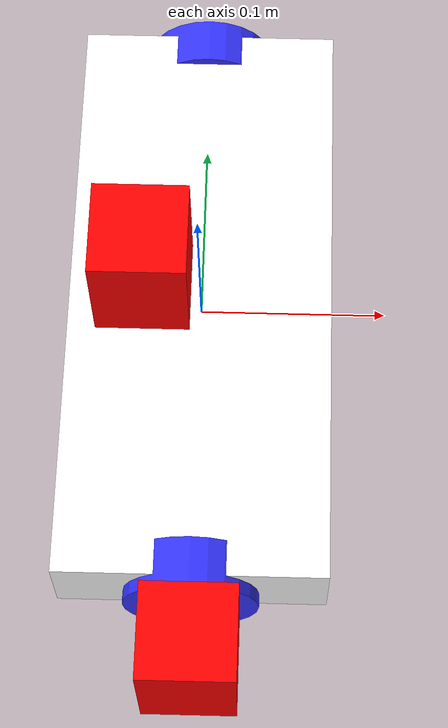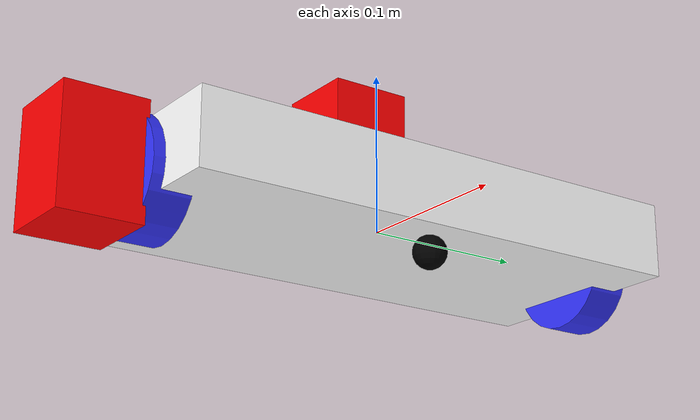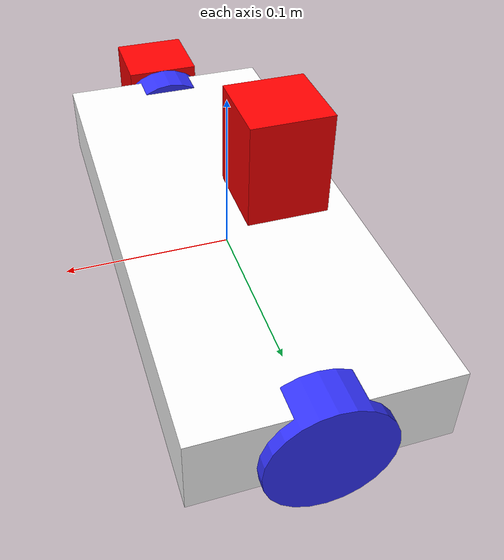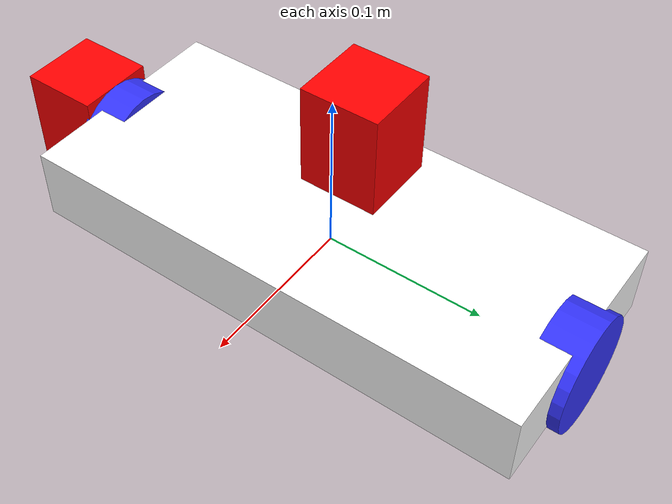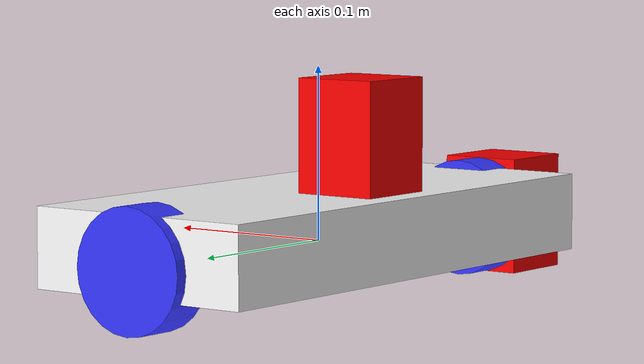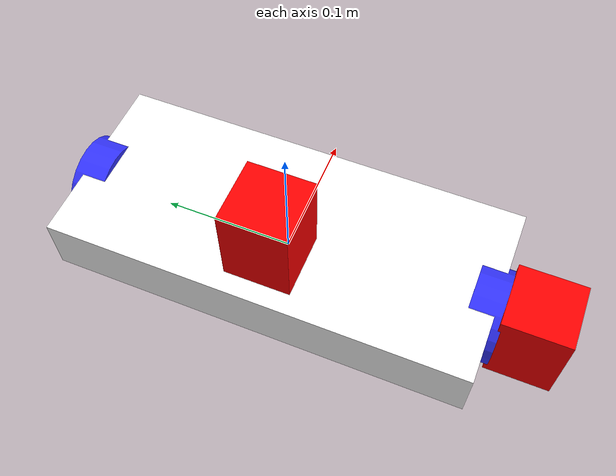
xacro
<?xml version="1.0"?>
<robot xmlns:xacro="http://www.ros.org/wiki/xacro"  name="robot">

    <xacro:arg name="use_ros2_control" default="true"/>
    <xacro:arg name="sim_mode" default="false"/>

    <xacro:include filename="robot_core.xacro" />

    <xacro:if value="$(arg use_ros2_control)">
        <xacro:include filename="ros2_control.xacro" />
    </xacro:if>

    <xacro:unless value="$(arg use_ros2_control)">
       <xacro:include filename="gazebo_control.xacro"/>
    </xacro:unless>

    <xacro:include filename="lidar.xacro"/>
    <xacro:include filename="lidar_2nd.xacro"/>

</robot>

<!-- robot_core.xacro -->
<robot xmlns:xacro="http://www.ros.org/wiki/xacro" >

    <xacro:include filename="inertial_macros.xacro"/>

    <material name="white">
        <color rgba="1 1 1 1" />
    </material>

    <material name="orange">
        <color rgba="1 0.3 0.1 1" />
    </material>

    <material name="blue">
        <color rgba="0.2 0.2 1 1" />
    </material>

    <material name="red">
        <color rgba="1 0 0 1" />
    </material>

    <material name="black">
        <color rgba="0 0 0 1" />
    </material>

    <!-- BASE LINK  -->

    <link name="base_link">

    </link>

    <!-- BASE_FOOTPRINT LINK -->
    <joint name="base_footprint_joint" type="fixed">
        <parent link="base_link"/>
        <child link="base_footprint"/>
        <origin xyz="0 0 0" rpy="0 0 0"/>
    </joint>

    <link name="base_footprint">
    </link>

    <!--  CHASSIS LINK  -->
    <joint name="chassis_joint" type="fixed">
        <parent link="base_link"/>
        <child link="chassis"/>
        <origin xyz="0 0 0"/>
    </joint>

    <link name="chassis">
        <visual>
            <origin xyz="0 0 0.007"/>
            <geometry>
                <box size="0.140 0.320 0.0455"/>
            </geometry>
            <material name="white"/>
        </visual>
        <collision>
            <origin xyz="0 0 0.007"/>
            <geometry>
                <box size="0.140 0.320 0.0455"/>
            </geometry>
        </collision>
        <xacro:inertial_box mass="0.5" x="0.140" y="0.320" z="0.0455">
            <origin xyz="0 0 0" rpy="0 0 0"/>
        </xacro:inertial_box>
    </link>

    <gazebo reference="chassis">
        <material>Gazebo/White</material>
    </gazebo>

    <!--  LEFT WHEEL LINK  -->
    <joint name="left_wheel_joint" type="continuous">
        <parent link="base_link"/>
        <child link="left_wheel"/>
        <origin xyz="0 0.15425 0" rpy="-${pi/2} 0 0"/>
        <axis xyz="0 0 1"/>
    </joint>

    <link name="left_wheel">
        <visual>
            <geometry>
                <cylinder radius="0.035" length="0.0254"/>
            </geometry>
            <material name="blue"/>
        </visual>
        <collision>
            <geometry>
                <sphere radius="0.035"/>
            </geometry>
        </collision>
        <xacro:inertial_sphere mass="0.1" radius="0.035" >
            <origin xyz="0 0 0" rpy="0 0 0"/>
        </xacro:inertial_sphere>
    </link>

    <gazebo reference="left_wheel">
        <material>Gazebo/Blue</material>
    </gazebo>

    <!--  RIGHT WHEEL LINK  -->
    <joint name="right_wheel_joint" type="continuous">
        <parent link="base_link"/>
        <child link="right_wheel"/>
        <origin xyz="0 -0.15425 0" rpy="${pi/2} 0 0"/>
        <axis xyz="0 0 -1"/>
    </joint>

    <link name="right_wheel">
        <visual>
            <geometry>
                <cylinder radius="0.035" length="0.0254"/>
            </geometry>
            <material name="blue"/>
        </visual>
        <collision>
            <geometry>
                <sphere radius="0.035"/>
            </geometry>
        </collision>
        <xacro:inertial_sphere mass="0.1" radius="0.035" >
            <origin xyz="0 0 0" rpy="0 0 0"/>
        </xacro:inertial_sphere>
    </link>

    <gazebo reference="right_wheel">
        <material>Gazebo/Blue</material>
    </gazebo>

    <!--  CASTER WHEEL LINK-->
    <joint name="caster_wheel_joint" type="fixed">
        <parent link="base_link"/>
        <child link="caster_wheel"/>
        <origin xyz="0.05 0 -0.025"/>
    </joint>

    <link name="caster_wheel">
        <visual>
            <geometry>
                <sphere radius="0.01"/>
            </geometry>
            <material name="black"/>
        </visual>
        <collision>
            <geometry>
                <sphere radius="0.01"/>
            </geometry>
        </collision>
        <xacro:inertial_sphere mass="0.01" radius="0.01">
            <origin xyz="0 0 0" rpy="0 0 0"/>
        </xacro:inertial_sphere>
    </link>

    <gazebo reference="caster_wheel">
        <material>Gazebo/Black</material>
        <mu1 value="0.0"/>
        <mu2 value="0.0"/>

    </gazebo>

</robot>

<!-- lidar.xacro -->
<robot xmlns:xacro="http://www.ros.org/wiki/xacro" >

    <joint name= "laser_joint" type="fixed">
        <parent link="chassis"/>
        <child link="laser_frame"/>
        <origin xyz="0.0 -0.19 0.0" rpy="${pi} 0 ${-pi/2}"/>
    </joint>

    <link name="laser_frame">
         <visual>
            <geometry>
                <box size="0.05 0.05 0.070"/>
            </geometry>
            <material name="red"/>
        </visual>
        <collision>
            <geometry>
                <box size="0.05 0.05 0.070"/>
            </geometry>
        </collision>
        <xacro:inertial_box mass="0.1" x="0.05" y="0.05" z="0.070">
            <origin xyz="0 0 0" rpy="0 0 0"/>
        </xacro:inertial_box>
    </link>

    <gazebo reference="laser_frame">
        <material>Gazebo/Red</material>
        <sensor name="laser" type="ray">
            <pose> 0 0 0 0 0 0 </pose>
            <visualize>true</visualize>
            <update_rate>10</update_rate>
            <ray>
                <scan>
                    <horizontal>
                        <samples>636</samples>
                        <resolution>0.36</resolution>
                        <min_angle>-2.0</min_angle>
                        <max_angle>2.0</max_angle>
                    </horizontal>
                </scan>
                <range>
                    <min>0.04</min>
                    <max>4</max>
                    <resolution>0.36</resolution>
                </range>
            </ray>
            <plugin name="laser_controller" filename="libgazebo_ros_ray_sensor.so">
                <ros>
                    <argument>~/out:=scan</argument>
                </ros>
                <output_type>sensor_msgs/LaserScan</output_type>
                <frame_name>laser_frame</frame_name>
            </plugin>
        </sensor>

    </gazebo>

</robot>

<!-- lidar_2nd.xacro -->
<robot xmlns:xacro="http://www.ros.org/wiki/xacro" >

    <joint name= "laser_joint2" type="fixed">
        <parent link="chassis"/>
        <child link="laser_frame2"/>
        <origin xyz="-0.03 0 0.06" rpy="0 0 ${pi}"/>
    </joint>

    <link name="laser_frame2">
         <visual>
            <geometry>
                <box size="0.05 0.05 0.070"/>
            </geometry>
            <material name="red"/>
        </visual>
        <collision>
            <geometry>
                <box size="0.05 0.05 0.070"/>
            </geometry>
        </collision>
        <xacro:inertial_box mass="0.1" x="0.05" y="0.05" z="0.070">
            <origin xyz="0 0 0" rpy="0 0 0"/>
        </xacro:inertial_box>
    </link>

    <gazebo reference="laser_frame2">
        <material>Gazebo/Red</material>
        <sensor name="laser2" type="ray">
            <pose> 0 0 0 0 0 0 </pose>
            <visualize>true</visualize>
            <update_rate>10</update_rate>
            <ray>
                <scan>
                    <horizontal>
                        <samples>318</samples>
                        <resolution>0.36</resolution>
                        <min_angle>-1.00</min_angle>
                        <max_angle>1.00</max_angle>
                    </horizontal>
                </scan>
                <range>
                    <min>0.04</min>
                    <max>4</max>
                    <resolution>0.36</resolution>
                </range>
            </ray>
            <plugin name="laser_controller2" filename="libgazebo_ros_ray_sensor.so">
                <ros>
                    <argument>~/out:=scan</argument>
                </ros>
                <output_type>sensor_msgs/LaserScan</output_type>
                <frame_name>laser_frame2</frame_name>
            </plugin>
        </sensor>

    </gazebo>

</robot>
